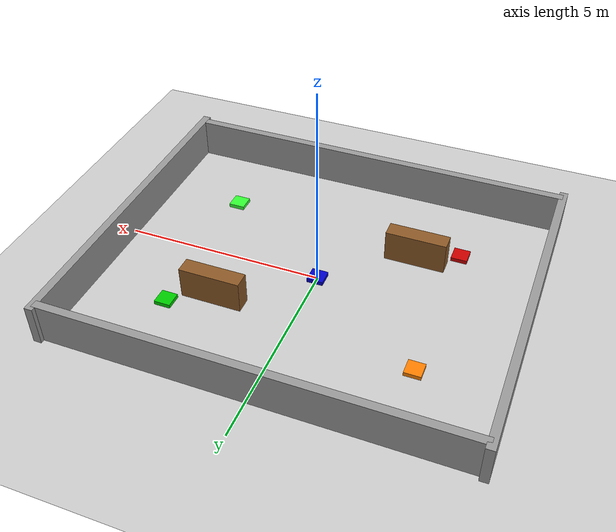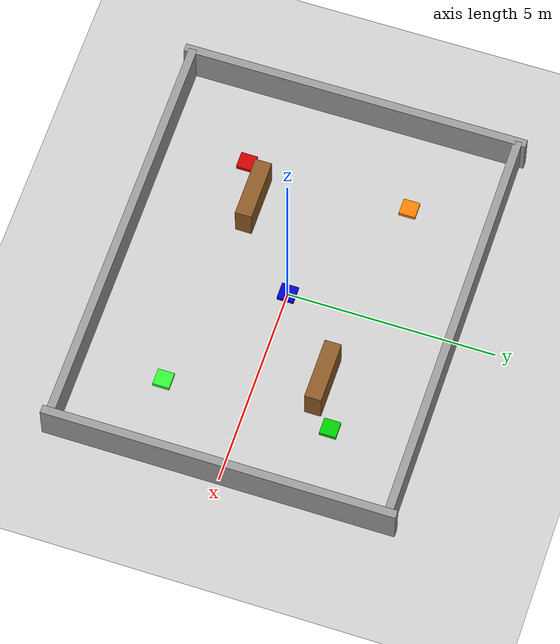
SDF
<?xml version="1.0" ?>
<!--
  warehouse.sdf — 仓库配送仿真场景
  这是整个 demo 的物理世界：Gazebo 在这里生成墙体、货架、站点标记和机器人。
  10m × 8m 的围合仓库与 maps/warehouse.yaml、delivery_bringup/config/stations.yaml
  共同定义同一套空间坐标系。
-->
<sdf version="1.9">
  <world name="warehouse">

    <!-- 物理引擎和步长：
         1ms 的步长让导航和避障表现更平滑，适合这个小型室内 demo。 -->
    <physics name="1ms" type="ignored">
      <max_step_size>0.001</max_step_size>
      <real_time_factor>1.0</real_time_factor>
    </physics>

    <!-- 必要插件：
         Physics / Sensors / Imu / Contact 等插件保证仿真具有完整的感知和运动闭环。 -->
    <plugin filename="gz-sim-physics-system" name="gz::sim::systems::Physics"/>
    <plugin filename="gz-sim-user-commands-system" name="gz::sim::systems::UserCommands"/>
    <plugin filename="gz-sim-scene-broadcaster-system" name="gz::sim::systems::SceneBroadcaster"/>
    <plugin filename="gz-sim-sensors-system" name="gz::sim::systems::Sensors">
      <render_engine>ogre2</render_engine>
    </plugin>
    <plugin filename="gz-sim-imu-system" name="gz::sim::systems::Imu"/>
    <plugin filename="gz-sim-contact-system" name="gz::sim::systems::Contact"/>

    <!-- 光照：为视觉和 RViz 中的场景观感提供基础照明。 -->
    <light type="directional" name="sun">
      <cast_shadows>true</cast_shadows>
      <pose>0 0 10 0 0 0</pose>
      <diffuse>0.8 0.8 0.8 1</diffuse>
      <specular>0.2 0.2 0.2 1</specular>
      <direction>-0.5 0.1 -0.9</direction>
    </light>

    <!-- 地面：为机器人提供稳定的可行驶平面。 -->
    <model name="ground_plane">
      <static>true</static>
      <link name="link">
        <collision name="collision">
          <geometry>
            <plane>
              <normal>0 0 1</normal>
              <size>20 20</size>
            </plane>
          </geometry>
        </collision>
        <visual name="visual">
          <geometry>
            <plane>
              <normal>0 0 1</normal>
              <size>20 20</size>
            </plane>
          </geometry>
          <material>
            <ambient>0.8 0.8 0.8 1</ambient>
            <diffuse>0.8 0.8 0.8 1</diffuse>
          </material>
        </visual>
      </link>
    </model>

    <!-- ======================== 仓库围墙 ========================
         围墙边界与 warehouse.yaml 的 origin / 尺寸一致，确保地图和世界对得上。 -->
    <!-- 北墙 (Y=4) -->
    <model name="wall_north">
      <static>true</static>
      <pose>0 4 0.5 0 0 0</pose>
      <link name="link">
        <collision name="collision">
          <geometry><box><size>10 0.2 1.0</size></box></geometry>
        </collision>
        <visual name="visual">
          <geometry><box><size>10 0.2 1.0</size></box></geometry>
          <material>
            <ambient>0.6 0.6 0.6 1</ambient>
            <diffuse>0.6 0.6 0.6 1</diffuse>
          </material>
        </visual>
      </link>
    </model>

    <!-- 南墙 (Y=-4) -->
    <model name="wall_south">
      <static>true</static>
      <pose>0 -4 0.5 0 0 0</pose>
      <link name="link">
        <collision name="collision">
          <geometry><box><size>10 0.2 1.0</size></box></geometry>
        </collision>
        <visual name="visual">
          <geometry><box><size>10 0.2 1.0</size></box></geometry>
          <material>
            <ambient>0.6 0.6 0.6 1</ambient>
            <diffuse>0.6 0.6 0.6 1</diffuse>
          </material>
        </visual>
      </link>
    </model>

    <!-- 东墙 (X=5) -->
    <model name="wall_east">
      <static>true</static>
      <pose>5 0 0.5 0 0 0</pose>
      <link name="link">
        <collision name="collision">
          <geometry><box><size>0.2 8.4 1.0</size></box></geometry>
        </collision>
        <visual name="visual">
          <geometry><box><size>0.2 8.4 1.0</size></box></geometry>
          <material>
            <ambient>0.6 0.6 0.6 1</ambient>
            <diffuse>0.6 0.6 0.6 1</diffuse>
          </material>
        </visual>
      </link>
    </model>

    <!-- 西墙 (X=-5) -->
    <model name="wall_west">
      <static>true</static>
      <pose>-5 0 0.5 0 0 0</pose>
      <link name="link">
        <collision name="collision">
          <geometry><box><size>0.2 8.4 1.0</size></box></geometry>
        </collision>
        <visual name="visual">
          <geometry><box><size>0.2 8.4 1.0</size></box></geometry>
          <material>
            <ambient>0.6 0.6 0.6 1</ambient>
            <diffuse>0.6 0.6 0.6 1</diffuse>
          </material>
        </visual>
      </link>
    </model>

    <!-- ======================== 内部障碍物（货架） ========================
         货架用于给 Nav2 提供真实一些的通道约束，也让 demo 更接近仓库场景。 -->
    <model name="shelf_1">
      <static>true</static>
      <pose>2.0 1.5 0.4 0 0 0</pose>
      <link name="link">
        <collision name="collision">
          <geometry><box><size>1.5 0.4 0.8</size></box></geometry>
        </collision>
        <visual name="visual">
          <geometry><box><size>1.5 0.4 0.8</size></box></geometry>
          <material>
            <ambient>0.55 0.35 0.15 1</ambient>
            <diffuse>0.55 0.35 0.15 1</diffuse>
          </material>
        </visual>
      </link>
    </model>

    <model name="shelf_2">
      <static>true</static>
      <pose>-2.0 -1.5 0.4 0 0 0</pose>
      <link name="link">
        <collision name="collision">
          <geometry><box><size>1.5 0.4 0.8</size></box></geometry>
        </collision>
        <visual name="visual">
          <geometry><box><size>1.5 0.4 0.8</size></box></geometry>
          <material>
            <ambient>0.55 0.35 0.15 1</ambient>
            <diffuse>0.55 0.35 0.15 1</diffuse>
          </material>
        </visual>
      </link>
    </model>

    <!-- ======================== 站点标记 ========================
         这些彩色方块是业务站点的可视化锚点，不参与逻辑判断；
         真正用于接单校验和导航的是 delivery_bringup/config/stations.yaml。 -->
    <!-- station_A (pickup) — 绿色 -->
    <model name="marker_station_A">
      <static>true</static>
      <pose>3.0 2.0 0.05 0 0 0</pose>
      <link name="link">
        <visual name="visual">
          <geometry><box><size>0.4 0.4 0.1</size></box></geometry>
          <material>
            <ambient>0.0 0.8 0.0 1</ambient>
            <diffuse>0.0 0.8 0.0 1</diffuse>
          </material>
        </visual>
      </link>
    </model>

    <!-- station_B (pickup) — 浅绿色 -->
    <model name="marker_station_B">
      <static>true</static>
      <pose>3.0 -2.0 0.05 0 0 0</pose>
      <link name="link">
        <visual name="visual">
          <geometry><box><size>0.4 0.4 0.1</size></box></geometry>
          <material>
            <ambient>0.2 1.0 0.2 1</ambient>
            <diffuse>0.2 1.0 0.2 1</diffuse>
          </material>
        </visual>
      </link>
    </model>

    <!-- station_C (dropoff) — 红色 -->
    <model name="marker_station_C">
      <static>true</static>
      <pose>-3.0 -2.0 0.05 0 0 0</pose>
      <link name="link">
        <visual name="visual">
          <geometry><box><size>0.4 0.4 0.1</size></box></geometry>
          <material>
            <ambient>0.8 0.0 0.0 1</ambient>
            <diffuse>0.8 0.0 0.0 1</diffuse>
          </material>
        </visual>
      </link>
    </model>

    <!-- station_D (dropoff) — 橙色 -->
    <model name="marker_station_D">
      <static>true</static>
      <pose>-3.0 2.0 0.05 0 0 0</pose>
      <link name="link">
        <visual name="visual">
          <geometry><box><size>0.4 0.4 0.1</size></box></geometry>
          <material>
            <ambient>1.0 0.5 0.0 1</ambient>
            <diffuse>1.0 0.5 0.0 1</diffuse>
          </material>
        </visual>
      </link>
    </model>

    <!-- charge_home — 蓝色 -->
    <model name="marker_charge_home">
      <static>true</static>
      <pose>0 0 0.05 0 0 0</pose>
      <link name="link">
        <visual name="visual">
          <geometry><box><size>0.4 0.4 0.1</size></box></geometry>
          <material>
            <ambient>0.0 0.0 0.8 1</ambient>
            <diffuse>0.0 0.0 0.8 1</diffuse>
          </material>
        </visual>
      </link>
    </model>

  </world>
</sdf>
